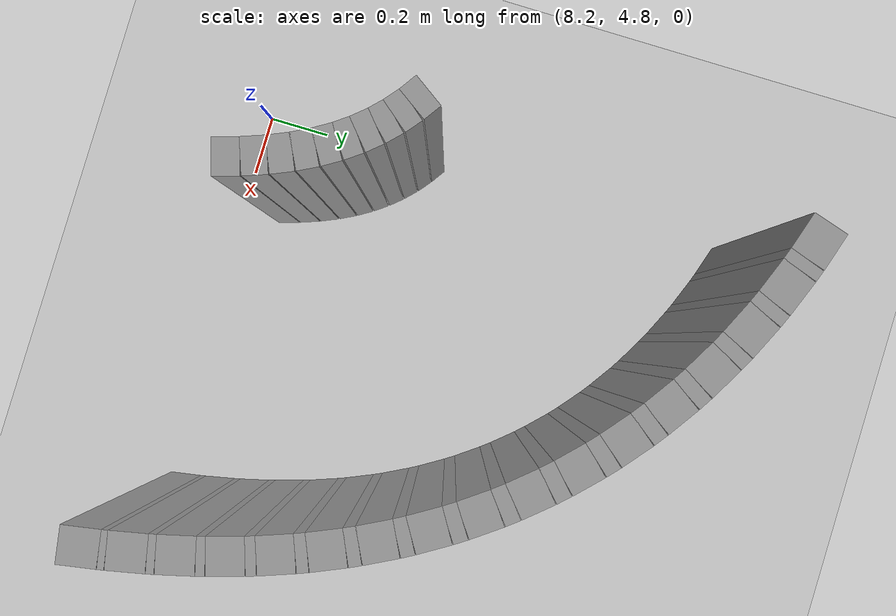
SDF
<sdf version="1.6">
 <world name="default">
  <include><uri>model://ground_plane</uri></include>
  <include><uri>model://sun</uri></include>
  <model name="wall_202_outward">
   <static>true</static>
   <link name="link">
    <collision name="collision">
     <geometry><box><size>0.0731374717671151 0.1 1.0</size></box></geometry>
    </collision>
    <visual name="visual">
     <geometry><box><size>0.0731374717671151 0.1 1.0</size></box></geometry>
     <material>
      <script><uri>file://media/materials/scripts/gazebo.material</uri><name>Gazebo/Gray</name></script>
     </material>
    </visual>
   </link>
   <pose>8.483392981082602 4.94998115942253 0.5 0 0 1.866559989626174</pose>
  </model>
  <model name="wall_203_outward">
   <static>true</static>
   <link name="link">
    <collision name="collision">
     <geometry><box><size>0.06839937056278961 0.1 1.0</size></box></geometry>
    </collision>
    <visual name="visual">
     <geometry><box><size>0.06839937056278961 0.1 1.0</size></box></geometry>
     <material>
      <script><uri>file://media/materials/scripts/gazebo.material</uri><name>Gazebo/Gray</name></script>
     </material>
    </visual>
   </link>
   <pose>8.460990945843449 5.017082359365348 0.5 0 0 1.9213047626104818</pose>
  </model>
  <model name="wall_204_outward">
   <static>true</static>
   <link name="link">
    <collision name="collision">
     <geometry><box><size>0.06386743062861154 0.1 1.0</size></box></geometry>
    </collision>
    <visual name="visual">
     <geometry><box><size>0.06386743062861154 0.1 1.0</size></box></geometry>
     <material>
      <script><uri>file://media/materials/scripts/gazebo.material</uri><name>Gazebo/Gray</name></script>
     </material>
    </visual>
   </link>
   <pose>8.436466306945597 5.078466961953789 0.5 0 0 1.9825804812165428</pose>
  </model>
  <model name="wall_205_outward">
   <static>true</static>
   <link name="link">
    <collision name="collision">
     <geometry><box><size>0.05970769353476436 0.1 1.0</size></box></geometry>
    </collision>
    <visual name="visual">
     <geometry><box><size>0.05970769353476436 0.1 1.0</size></box></geometry>
     <material>
      <script><uri>file://media/materials/scripts/gazebo.material</uri><name>Gazebo/Gray</name></script>
     </material>
    </visual>
   </link>
   <pose>8.409913163427348 5.134218800544559 0.5 0 0 2.0502657997335483</pose>
  </model>
  <model name="wall_206_outward">
   <static>true</static>
   <link name="link">
    <collision name="collision">
     <geometry><box><size>0.056142117745932994 0.1 1.0</size></box></geometry>
    </collision>
    <visual name="visual">
     <geometry><box><size>0.056142117745932994 0.1 1.0</size></box></geometry>
     <material>
      <script><uri>file://media/materials/scripts/gazebo.material</uri><name>Gazebo/Gray</name></script>
     </material>
    </visual>
   </link>
   <pose>8.381393376809548 5.184591091359547 0.5 0 0 2.123957117440786</pose>
  </model>
  <model name="wall_207_outward">
   <static>true</static>
   <link name="link">
    <collision name="collision">
     <geometry><box><size>0.053439309950452006 0.1 1.0</size></box></geometry>
    </collision>
    <visual name="visual">
     <geometry><box><size>0.053439309950452006 0.1 1.0</size></box></geometry>
     <material>
      <script><uri>file://media/materials/scripts/gazebo.material</uri><name>Gazebo/Gray</name></script>
     </material>
    </visual>
   </link>
   <pose>8.35085768802288 5.2300324693643505 0.5 0 0 2.202928202275638</pose>
  </model>
  <model name="wall_208_outward">
   <static>true</static>
   <link name="link">
    <collision name="collision">
     <geometry><box><size>0.051879364887424936 0.1 1.0</size></box></geometry>
    </collision>
    <visual name="visual">
     <geometry><box><size>0.051879364887424936 0.1 1.0</size></box></geometry>
     <material>
      <script><uri>file://media/materials/scripts/gazebo.material</uri><name>Gazebo/Gray</name></script>
     </material>
    </visual>
   </link>
   <pose>8.318059125996436 5.271172206095704 0.5 0 0 2.2860167977524077</pose>
  </model>
  <model name="wall_209_outward">
   <static>true</static>
   <link name="link">
    <collision name="collision">
     <geometry><box><size>0.051698517737410014 0.1 1.0</size></box></geometry>
    </collision>
    <visual name="visual">
     <geometry><box><size>0.051698517737410014 0.1 1.0</size></box></geometry>
     <material>
      <script><uri>file://media/materials/scripts/gazebo.material</uri><name>Gazebo/Gray</name></script>
     </material>
    </visual>
   </link>
   <pose>8.282489319381511 5.308748344955941 0.5 0 0 2.3716772579365166</pose>
  </model>
  <model name="wall_210_outward">
   <static>true</static>
   <link name="link">
    <collision name="collision">
     <geometry><box><size>0.053022391144761725 0.1 1.0</size></box></geometry>
    </collision>
    <visual name="visual">
     <geometry><box><size>0.053022391144761725 0.1 1.0</size></box></geometry>
     <material>
      <script><uri>file://media/materials/scripts/gazebo.material</uri><name>Gazebo/Gray</name></script>
     </material>
    </visual>
   </link>
   <pose>8.243375226948313 5.34348443964074 0.5 0 0 2.458044886425209</pose>
  </model>
  <model name="wall_211_outward">
   <static>true</static>
   <link name="link">
    <collision name="collision">
     <geometry><box><size>0.05582637126116896 0.1 1.0</size></box></geometry>
    </collision>
    <visual name="visual">
     <geometry><box><size>0.05582637126116896 0.1 1.0</size></box></geometry>
     <material>
      <script><uri>file://media/materials/scripts/gazebo.material</uri><name>Gazebo/Gray</name></script>
     </material>
    </visual>
   </link>
   <pose>8.199756779340936 5.375951024436143 0.5 0 0 2.5432182193713744</pose>
  </model>
  <model name="wall_370_inward">
   <static>true</static>
   <link name="link">
    <collision name="collision">
     <geometry><box><size>0.10412850797641207 0.1 1.0</size></box></geometry>
    </collision>
    <visual name="visual">
     <geometry><box><size>0.10412850797641207 0.1 1.0</size></box></geometry>
     <material>
      <script><uri>file://media/materials/scripts/gazebo.material</uri><name>Gazebo/Gray</name></script>
     </material>
    </visual>
   </link>
   <pose>9.522970773611359 4.884711676761851 0.5 0 0 1.740415864684642</pose>
  </model>
  <model name="wall_371_inward">
   <static>true</static>
   <link name="link">
    <collision name="collision">
     <geometry><box><size>0.017962780473132954 0.1 1.0</size></box></geometry>
    </collision>
    <visual name="visual">
     <geometry><box><size>0.017962780473132954 0.1 1.0</size></box></geometry>
     <material>
      <script><uri>file://media/materials/scripts/gazebo.material</uri><name>Gazebo/Gray</name></script>
     </material>
    </visual>
   </link>
   <pose>9.512507048744276 4.944852596683434 0.5 0 0 1.7583796112809476</pose>
  </model>
  <model name="wall_372_inward">
   <static>true</static>
   <link name="link">
    <collision name="collision">
     <geometry><box><size>0.1022665126563499 0.1 1.0</size></box></geometry>
    </collision>
    <visual name="visual">
     <geometry><box><size>0.1022665126563499 0.1 1.0</size></box></geometry>
     <material>
      <script><uri>file://media/materials/scripts/gazebo.material</uri><name>Gazebo/Gray</name></script>
     </material>
    </visual>
   </link>
   <pose>9.500395717106237 5.003733308160531 0.5 0 0 1.77634335787727</pose>
  </model>
  <model name="wall_373_inward">
   <static>true</static>
   <link name="link">
    <collision name="collision">
     <geometry><box><size>0.020980797595513686 0.1 1.0</size></box></geometry>
    </collision>
    <visual name="visual">
     <geometry><box><size>0.020980797595513686 0.1 1.0</size></box></geometry>
     <material>
      <script><uri>file://media/materials/scripts/gazebo.material</uri><name>Gazebo/Gray</name></script>
     </material>
    </visual>
   </link>
   <pose>9.48760316985496 5.064012570401291 0.5 0 0 1.797325695047495</pose>
  </model>
  <model name="wall_374_inward">
   <static>true</static>
   <link name="link">
    <collision name="collision">
     <geometry><box><size>0.10051847937320106 0.1 1.0</size></box></geometry>
    </collision>
    <visual name="visual">
     <geometry><box><size>0.10051847937320106 0.1 1.0</size></box></geometry>
     <material>
      <script><uri>file://media/materials/scripts/gazebo.material</uri><name>Gazebo/Gray</name></script>
     </material>
    </visual>
   </link>
   <pose>9.472933934066667 5.1229625490632085 0.5 0 0 1.818308032217758</pose>
  </model>
  <model name="wall_375_inward">
   <static>true</static>
   <link name="link">
    <collision name="collision">
     <geometry><box><size>0.024123638299676183 0.1 1.0</size></box></geometry>
    </collision>
    <visual name="visual">
     <geometry><box><size>0.024123638299676183 0.1 1.0</size></box></geometry>
     <material>
      <script><uri>file://media/materials/scripts/gazebo.material</uri><name>Gazebo/Gray</name></script>
     </material>
    </visual>
   </link>
   <pose>9.457384509707708 5.183309686002924 0.5 0 0 1.842434010921974</pose>
  </model>
  <model name="wall_376_inward">
   <static>true</static>
   <link name="link">
    <collision name="collision">
     <geometry><box><size>0.09889241452324986 0.1 1.0</size></box></geometry>
    </collision>
    <visual name="visual">
     <geometry><box><size>0.09889241452324986 0.1 1.0</size></box></geometry>
     <material>
      <script><uri>file://media/materials/scripts/gazebo.material</uri><name>Gazebo/Gray</name></script>
     </material>
    </visual>
   </link>
   <pose>9.4397361021171 5.242228476643769 0.5 0 0 1.8665599896261769</pose>
  </model>
  <model name="wall_377_inward">
   <static>true</static>
   <link name="link">
    <collision name="collision">
     <geometry><box><size>0.027368968504637978 0.1 1.0</size></box></geometry>
    </collision>
    <visual name="visual">
     <geometry><box><size>0.027368968504637978 0.1 1.0</size></box></geometry>
     <material>
      <script><uri>file://media/materials/scripts/gazebo.material</uri><name>Gazebo/Gray</name></script>
     </material>
    </visual>
   </link>
   <pose>9.420978597799564 5.302503955067617 0.5 0 0 1.8939323761183335</pose>
  </model>
  <model name="wall_378_inward">
   <static>true</static>
   <link name="link">
    <collision name="collision">
     <geometry><box><size>0.09741270758395064 0.1 1.0</size></box></geometry>
    </collision>
    <visual name="visual">
     <geometry><box><size>0.09741270758395064 0.1 1.0</size></box></geometry>
     <material>
      <script><uri>file://media/materials/scripts/gazebo.material</uri><name>Gazebo/Gray</name></script>
     </material>
    </visual>
   </link>
   <pose>9.39990863880264 5.361225110892818 0.5 0 0 1.9213047626104585</pose>
  </model>
  <model name="wall_379_inward">
   <static>true</static>
   <link name="link">
    <collision name="collision">
     <geometry><box><size>0.03063306634509489 0.1 1.0</size></box></geometry>
    </collision>
    <visual name="visual">
     <geometry><box><size>0.03063306634509489 0.1 1.0</size></box></geometry>
     <material>
      <script><uri>file://media/materials/scripts/gazebo.material</uri><name>Gazebo/Gray</name></script>
     </material>
    </visual>
   </link>
   <pose>9.37748655960948 5.42118743413735 0.5 0 0 1.9519426219135059</pose>
  </model>
  <model name="wall_380_inward">
   <static>true</static>
   <link name="link">
    <collision name="collision">
     <geometry><box><size>0.09611894799757016 0.1 1.0</size></box></geometry>
    </collision>
    <visual name="visual">
     <geometry><box><size>0.09611894799757016 0.1 1.0</size></box></geometry>
     <material>
      <script><uri>file://media/materials/scripts/gazebo.material</uri><name>Gazebo/Gray</name></script>
     </material>
    </visual>
   </link>
   <pose>9.3525534797517 5.479446930379568 0.5 0 0 1.9825804812165475</pose>
  </model>
  <model name="wall_381_inward">
   <static>true</static>
   <link name="link">
    <collision name="collision">
     <geometry><box><size>0.03383619948451319 0.1 1.0</size></box></geometry>
    </collision>
    <visual name="visual">
     <geometry><box><size>0.03383619948451319 0.1 1.0</size></box></geometry>
     <material>
      <script><uri>file://media/materials/scripts/gazebo.material</uri><name>Gazebo/Gray</name></script>
     </material>
    </visual>
   </link>
   <pose>9.326025816991084 5.538754915095264 0.5 0 0 2.0164231404750277</pose>
  </model>
  <model name="wall_382_inward">
   <static>true</static>
   <link name="link">
    <collision name="collision">
     <geometry><box><size>0.09506665718573779 0.1 1.0</size></box></geometry>
    </collision>
    <visual name="visual">
     <geometry><box><size>0.09506665718573779 0.1 1.0</size></box></geometry>
     <material>
      <script><uri>file://media/materials/scripts/gazebo.material</uri><name>Gazebo/Gray</name></script>
     </material>
    </visual>
   </link>
   <pose>9.296806187123714 5.5961942647796326 0.5 0 0 2.050265799733543</pose>
  </model>
  <model name="wall_383_inward">
   <static>true</static>
   <link name="link">
    <collision name="collision">
     <geometry><box><size>0.036837322459291125 0.1 1.0</size></box></geometry>
    </collision>
    <visual name="visual">
     <geometry><box><size>0.036837322459291125 0.1 1.0</size></box></geometry>
     <material>
      <script><uri>file://media/materials/scripts/gazebo.material</uri><name>Gazebo/Gray</name></script>
     </material>
    </visual>
   </link>
   <pose>9.26578575116159 5.654385407295486 0.5 0 0 2.0871114585871586</pose>
  </model>
  <model name="wall_384_inward">
   <static>true</static>
   <link name="link">
    <collision name="collision">
     <geometry><box><size>0.09432632664557648 0.1 1.0</size></box></geometry>
    </collision>
    <visual name="visual">
     <geometry><box><size>0.09432632664557648 0.1 1.0</size></box></geometry>
     <material>
      <script><uri>file://media/materials/scripts/gazebo.material</uri><name>Gazebo/Gray</name></script>
     </material>
    </visual>
   </link>
   <pose>9.231914297331128 5.710532723661329 0.5 0 0 2.123957117440797</pose>
  </model>
  <model name="wall_385_inward">
   <static>true</static>
   <link name="link">
    <collision name="collision">
     <geometry><box><size>0.039475282846006134 0.1 1.0</size></box></geometry>
    </collision>
    <visual name="visual">
     <geometry><box><size>0.039475282846006134 0.1 1.0</size></box></geometry>
     <material>
      <script><uri>file://media/materials/scripts/gazebo.material</uri><name>Gazebo/Gray</name></script>
     </material>
    </visual>
   </link>
   <pose>9.196111131375815 5.76703404943588 0.5 0 0 2.163442659858218</pose>
  </model>
  <model name="wall_386_inward">
   <static>true</static>
   <link name="link">
    <collision name="collision">
     <geometry><box><size>0.09397645547422576 0.1 1.0</size></box></geometry>
    </collision>
    <visual name="visual">
     <geometry><box><size>0.09397645547422576 0.1 1.0</size></box></geometry>
     <material>
      <script><uri>file://media/materials/scripts/gazebo.material</uri><name>Gazebo/Gray</name></script>
     </material>
    </visual>
   </link>
   <pose>9.157322765834527 5.82131441906886 0.5 0 0 2.202928202275644</pose>
  </model>
  <model name="wall_387_inward">
   <static>true</static>
   <link name="link">
    <collision name="collision">
     <geometry><box><size>0.04153234835382748 0.1 1.0</size></box></geometry>
    </collision>
    <visual name="visual">
     <geometry><box><size>0.04153234835382748 0.1 1.0</size></box></geometry>
     <material>
      <script><uri>file://media/materials/scripts/gazebo.material</uri><name>Gazebo/Gray</name></script>
     </material>
    </visual>
   </link>
   <pose>9.116603765282031 5.875452558239882 0.5 0 0 2.244472500014025</pose>
  </model>
  <model name="wall_388_inward">
   <static>true</static>
   <link name="link">
    <collision name="collision">
     <geometry><box><size>0.09409169192342036 0.1 1.0</size></box></geometry>
    </collision>
    <visual name="visual">
     <geometry><box><size>0.09409169192342036 0.1 1.0</size></box></geometry>
     <material>
      <script><uri>file://media/materials/scripts/gazebo.material</uri><name>Gazebo/Gray</name></script>
     </material>
    </visual>
   </link>
   <pose>9.072796605140777 5.927199218721631 0.5 0 0 2.2860167977524037</pose>
  </model>
  <model name="wall_389_inward">
   <static>true</static>
   <link name="link">
    <collision name="collision">
     <geometry><box><size>0.04281713645983713 0.1 1.0</size></box></geometry>
    </collision>
    <visual name="visual">
     <geometry><box><size>0.04281713645983713 0.1 1.0</size></box></geometry>
     <material>
      <script><uri>file://media/materials/scripts/gazebo.material</uri><name>Gazebo/Gray</name></script>
     </material>
    </visual>
   </link>
   <pose>9.027226152762172 5.978262839502333 0.5 0 0 2.328847027844455</pose>
  </model>
  <model name="wall_390_inward">
   <static>true</static>
   <link name="link">
    <collision name="collision">
     <geometry><box><size>0.09473207620440982 0.1 1.0</size></box></geometry>
    </collision>
    <visual name="visual">
     <geometry><box><size>0.09473207620440982 0.1 1.0</size></box></geometry>
     <material>
      <script><uri>file://media/materials/scripts/gazebo.material</uri><name>Gazebo/Gray</name></script>
     </material>
    </visual>
   </link>
   <pose>8.978500233957561 6.026779552240026 0.5 0 0 2.3716772579365113</pose>
  </model>
  <model name="wall_391_inward">
   <static>true</static>
   <link name="link">
    <collision name="collision">
     <geometry><box><size>0.043170393665366076 0.1 1.0</size></box></geometry>
    </collision>
    <visual name="visual">
     <geometry><box><size>0.043170393665366076 0.1 1.0</size></box></geometry>
     <material>
      <script><uri>file://media/materials/scripts/gazebo.material</uri><name>Gazebo/Gray</name></script>
     </material>
    </visual>
   </link>
   <pose>8.928361162830894 6.074091707314684 0.5 0 0 2.4148610721808565</pose>
  </model>
  <model name="wall_392_inward">
   <static>true</static>
   <link name="link">
    <collision name="collision"><geometry><box><size>0.09593394539984 0.1 1.0</size></box></geometry></collision>
    <visual name="visual">
     <geometry><box><size>0.09593394539984 0.1 1.0</size></box></geometry>
     <material>
      <script><uri>file://media/materials/scripts/gazebo.material</uri><name>Gazebo/Gray</name></script>
     </material>
    </visual>
   </link>
   <pose>8.875038895778712 6.118727002873995 0.5 0 0 2.458044886425207</pose>
  </model>
  <model name="wall_393_inward">
   <static>true</static>
   <link name="link">
    <collision name="collision">
     <geometry><box><size>0.04257379493913809 0.1 1.0</size></box></geometry>
    </collision>
    <visual name="visual">
     <geometry><box><size>0.04257379493913809 0.1 1.0</size></box></geometry>
     <material>
      <script><uri>file://media/materials/scripts/gazebo.material</uri><name>Gazebo/Gray</name></script>
     </material>
    </visual>
   </link>
   <pose>8.820786421828918 6.161749276756147 0.5 0 0 2.5006315528983145</pose>
  </model>
  <model name="wall_394_inward">
   <static>true</static>
   <link name="link">
    <collision name="collision">
     <geometry><box><size>0.09769068618897826 0.1 1.0</size></box></geometry>
    </collision>
    <visual name="visual">
     <geometry><box><size>0.09769068618897826 0.1 1.0</size></box></geometry>
     <material>
      <script><uri>file://media/materials/scripts/gazebo.material</uri><name>Gazebo/Gray</name></script>
     </material>
    </visual>
   </link>
   <pose>8.763365936135552 6.201992705162068 0.5 0 0 2.543218219371379</pose>
  </model>
  <model name="wall_395_inward">
   <static>true</static>
   <link name="link">
    <collision name="collision">
     <geometry><box><size>0.04108148896493162 0.1 1.0</size></box></geometry>
    </collision>
    <visual name="visual">
     <geometry><box><size>0.04108148896493162 0.1 1.0</size></box></geometry>
     <material>
      <script><uri>file://media/materials/scripts/gazebo.material</uri><name>Gazebo/Gray</name></script>
     </material>
    </visual>
   </link>
   <pose>8.705574505643515 6.240370898247525 0.5 0 0 2.584311272582069</pose>
  </model>
  <model name="wall_396_inward">
   <static>true</static>
   <link name="link">
    <collision name="collision">
     <geometry><box><size>0.0999513441709648 0.1 1.0</size></box></geometry>
    </collision>
    <visual name="visual">
     <geometry><box><size>0.0999513441709648 0.1 1.0</size></box></geometry>
     <material>
      <script><uri>file://media/materials/scripts/gazebo.material</uri><name>Gazebo/Gray</name></script>
     </material>
    </visual>
   </link>
   <pose>8.644677473900863 6.275900932347398 0.5 0 0 2.6254043257927697</pose>
  </model>
  <model name="wall_397_inward">
   <static>true</static>
   <link name="link">
    <collision name="collision">
     <geometry><box><size>0.0388561969279718 0.1 1.0</size></box></geometry>
    </collision>
    <visual name="visual">
     <geometry><box><size>0.0388561969279718 0.1 1.0</size></box></geometry>
     <material>
      <script><uri>file://media/materials/scripts/gazebo.material</uri><name>Gazebo/Gray</name></script>
     </material>
    </visual>
   </link>
   <pose>8.58395670586462 6.309492675743153 0.5 0 0 2.664270306910204</pose>
  </model>
  <model name="wall_398_inward">
   <static>true</static>
   <link name="link">
    <collision name="collision">
     <geometry><box><size>0.1026238320642465 0.1 1.0</size></box></geometry>
    </collision>
    <visual name="visual">
     <geometry><box><size>0.1026238320642465 0.1 1.0</size></box></geometry>
     <material>
      <script><uri>file://media/materials/scripts/gazebo.material</uri><name>Gazebo/Gray</name></script>
     </material>
    </visual>
   </link>
   <pose>8.520241897061855 6.340202073467419 0.5 0 0 2.7031362880276486</pose>
  </model>
  <model name="wall_399_inward">
   <static>true</static>
   <link name="link">
    <collision name="collision">
     <geometry><box><size>0.036139815462464864 0.1 1.0</size></box></geometry>
    </collision>
    <visual name="visual">
     <geometry><box><size>0.036139815462464864 0.1 1.0</size></box></geometry>
     <material>
      <script><uri>file://media/materials/scripts/gazebo.material</uri><name>Gazebo/Gray</name></script>
     </material>
    </visual>
   </link>
   <pose>8.457156476458831 6.3690613141908905 0.5 0 0 2.7392839750701836</pose>
  </model>
  <model name="wall_400_inward">
   <static>true</static>
   <link name="link">
    <collision name="collision">
     <geometry><box><size>0.10558380227513973 0.1 1.0</size></box></geometry>
    </collision>
    <visual name="visual">
     <geometry><box><size>0.10558380227513973 0.1 1.0</size></box></geometry>
     <material>
      <script><uri>file://media/materials/scripts/gazebo.material</uri><name>Gazebo/Gray</name></script>
     </material>
    </visual>
   </link>
   <pose>8.391237020965587 6.395037745862075 0.5 0 0 2.7754316621126924</pose>
  </model>
  <model name="wall_401_inward">
   <static>true</static>
   <link name="link">
    <collision name="collision">
     <geometry><box><size>0.03317386697627178 0.1 1.0</size></box></geometry>
    </collision>
    <visual name="visual">
     <geometry><box><size>0.03317386697627178 0.1 1.0</size></box></geometry>
     <material>
      <script><uri>file://media/materials/scripts/gazebo.material</uri><name>Gazebo/Gray</name></script>
     </material>
    </visual>
   </link>
   <pose>8.326268913693347 6.419360652807582 0.5 0 0 2.8086116167744644</pose>
  </model>
  <model name="wall_402_inward">
   <static>true</static>
   <link name="link">
    <collision name="collision">
     <geometry><box><size>0.10868415218165522 0.1 1.0</size></box></geometry>
    </collision>
    <visual name="visual">
     <geometry><box><size>0.10868415218165522 0.1 1.0</size></box></geometry>
     <material>
      <script><uri>file://media/materials/scripts/gazebo.material</uri><name>Gazebo/Gray</name></script>
     </material>
    </visual>
   </link>
   <pose>8.258674903064877 6.4408311416959965 0.5 0 0 2.841791571436251</pose>
  </model>
 </world>
</sdf>
